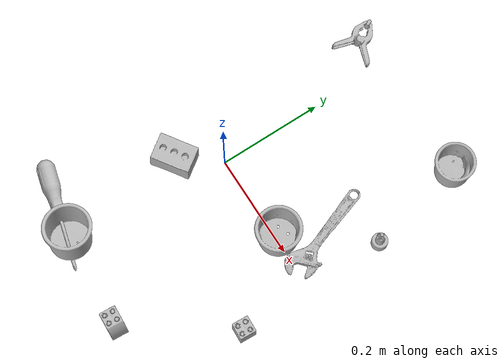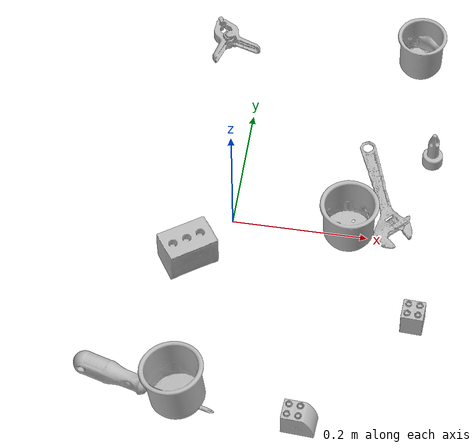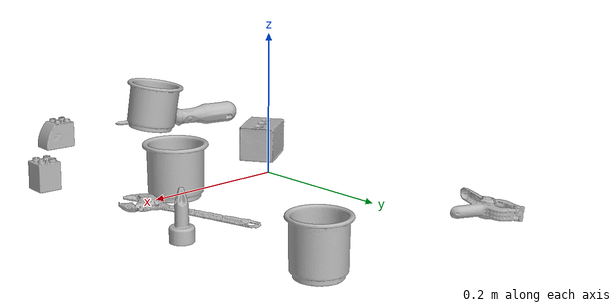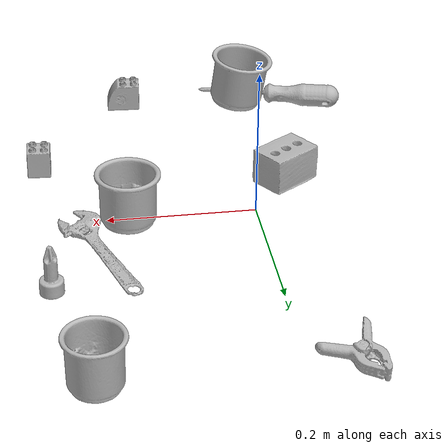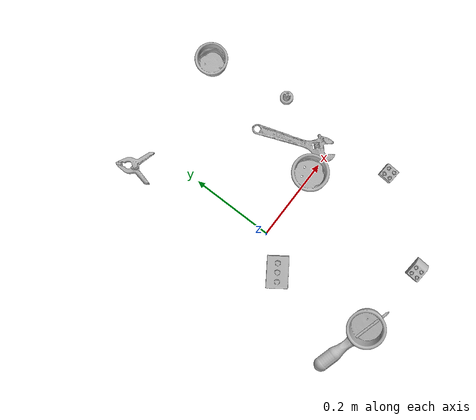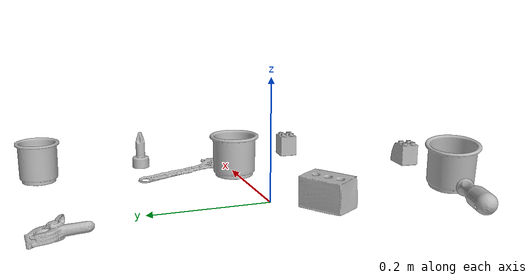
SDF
<sdf version="1.4">
  <world name="default">
    <light name="light1" type="point">
      <pose>0 0 1 0 0 0</pose>
      <diffuse>3 3 3 1</diffuse>
      <specular>3 3 3 1</specular>
    </light>
    <light name="light2" type="point">
      <pose>0 0.5 2 0 0 0</pose>
      <diffuse>1 1 1 1</diffuse>
      <specular>1 1 1 1</specular>
    </light>
    <light name="light3" type="point">
      <pose>0 0.5 2 0 0 0</pose>
      <diffuse>3 3 3 1</diffuse>
      <specular>3 3 3 1</specular>
    </light>
    <scene>
      <ambient>0.7 0.7 0.7</ambient>
    </scene>
    <model name="cup1">
      <link name="link_cup1">
        <collision name="default">
          <geometry>
            <mesh>
              <uri>model://h_cups/collision_meshes/collision.obj</uri>
              <scale>1.0 1.0 1.0</scale>
            </mesh>
          </geometry>
          <surface>
            <friction>
              <ode>
                <mu>0.5</mu>
                <mu2>0.5</mu2>
              </ode>
            </friction>
          <contact>
        <ode>
            <max_vel>0</max_vel>
            <min_depth>0.0001</min_depth>
            <kp>1e8</kp>
        </ode>
    </contact></surface>
        </collision>
        <visual name="default">
          <geometry>
            <mesh>
              <uri>model://h_cups/visual_meshes/visual.dae</uri>
              <scale>1.0 1.0 1.0</scale>
            </mesh>
          </geometry>
        </visual>
        <inertial>
          <mass>0.09017354249954224</mass>
          <pose>-2.702734127524309e-05 0.00023018653155304492 -0.0018405391601845622 -0.024362361674121313 0.06545247408237653 0.12884890922354367</pose>
          <inertia>
            <ixx>0.00011645493</ixx>
            <iyy>0.000115065246</iyy>
            <izz>0.00012212929</izz>
            <ixy>0</ixy>
            <ixz>0</ixz>
            <iyz>0</iyz>
          </inertia>
        </inertial>
      </link>
      <pose>-0.02995433658361435 -0.3126523196697235 0.04201376065611839 0.05098685874816957 0.13370058950113564 3.06894209197354</pose>
    </model>
    <model name="cup2">
      <link name="link_cup2">
        <collision name="default">
          <geometry>
            <mesh>
              <uri>model://g_cups/collision_meshes/collision.obj</uri>
              <scale>1.0 1.0 1.0</scale>
            </mesh>
          </geometry>
          <surface>
            <friction>
              <ode>
                <mu>0.5</mu>
                <mu2>0.5</mu2>
              </ode>
            </friction>
          <contact>
        <ode>
            <max_vel>0</max_vel>
            <min_depth>0.0001</min_depth>
            <kp>1e8</kp>
        </ode>
    </contact></surface>
        </collision>
        <visual name="default">
          <geometry>
            <mesh>
              <uri>model://g_cups/visual_meshes/visual.dae</uri>
              <scale>1.0 1.0 1.0</scale>
            </mesh>
          </geometry>
        </visual>
        <inertial>
          <mass>0.07892031967639923</mass>
          <pose>-0.0007946275873109698 -4.206384619465098e-05 -0.0021329368464648724 -0.21381953376637775 -0.31410844314425407 0.31119468358147234</pose>
          <inertia>
            <ixx>9.211769e-05</ixx>
            <iyy>9.180432e-05</iyy>
            <izz>9.541806e-05</izz>
            <ixy>0</ixy>
            <ixz>0</ixz>
            <iyz>0</iyz>
          </inertia>
        </inertial>
      </link>
      <pose>0.17148712277412415 0.005226347129791975 0.037202998995780945 -1.3028891212649334e-07 3.4620770504994155e-07 -2.8981406046718243</pose>
    </model>
    <model name="cup3">
      <link name="link_cup3">
        <collision name="default">
          <geometry>
            <mesh>
              <uri>model://e_cups/collision_meshes/collision.obj</uri>
              <scale>1.0 1.0 1.0</scale>
            </mesh>
          </geometry>
          <surface>
            <friction>
              <ode>
                <mu>0.5</mu>
                <mu2>0.5</mu2>
              </ode>
            </friction>
          <contact>
        <ode>
            <max_vel>0</max_vel>
            <min_depth>0.0001</min_depth>
            <kp>1e8</kp>
        </ode>
    </contact></surface>
        </collision>
        <visual name="default">
          <geometry>
            <mesh>
              <uri>model://e_cups/visual_meshes/visual.dae</uri>
              <scale>1.0 1.0 1.0</scale>
            </mesh>
          </geometry>
        </visual>
        <inertial>
          <mass>0.08743876963853836</mass>
          <pose>0.0011355745373293757 0.0028797851409763098 -0.0038829741533845663 0.6952398618358687 0.08767880823198544 -0.5235243888876825</pose>
          <inertia>
            <ixx>7.709911e-05</ixx>
            <iyy>8.05796e-05</iyy>
            <izz>7.3715666e-05</izz>
            <ixy>0</ixy>
            <ixz>0</ixz>
            <iyz>0</iyz>
          </inertia>
        </inertial>
      </link>
      <pose>0.2404826134443283 0.34050452709198 0.035599950700998306 3.139107943084022e-06 -1.7436764263946182e-06 -0.7890637846848054</pose>
    </model>
    <model name="toy1">
      <link name="link_toy1">
        <collision name="default">
          <geometry>
            <mesh>
              <uri>model://d_lego_duplo/collision_meshes/collision.obj</uri>
              <scale>1.0 1.0 1.0</scale>
            </mesh>
          </geometry>
          <surface>
            <friction>
              <ode>
                <mu>0.5</mu>
                <mu2>0.5</mu2>
              </ode>
            </friction>
          <contact>
        <ode>
            <max_vel>0</max_vel>
            <min_depth>0.0001</min_depth>
            <kp>1e8</kp>
        </ode>
    </contact></surface>
        </collision>
        <visual name="default">
          <geometry>
            <mesh>
              <uri>model://d_lego_duplo/visual_meshes/visual.dae</uri>
              <scale>1.0 1.0 1.0</scale>
            </mesh>
          </geometry>
        </visual>
        <inertial>
          <mass>0.04292278364300728</mass>
          <pose>0.002830562647432089 0.00016366151976399124 0.0008589805802330375 0.08010895821025366 -0.3835521883517419 0.0010296961053417666</pose>
          <inertia>
            <ixx>8.309218e-06</ixx>
            <iyy>1.1793034e-05</iyy>
            <izz>1.1372727e-05</izz>
            <ixy>0</ixy>
            <ixz>0</ixz>
            <iyz>0</iyz>
          </inertia>
        </inertial>
      </link>
      <pose>0.1466989368200302 -0.32897382974624634 0.02173999510705471 7.720036962543256e-06 -1.4711279073059037e-06 3.082452815152008</pose>
    </model>
    <model name="toy2">
      <link name="link_toy2">
        <collision name="default">
          <geometry>
            <mesh>
              <uri>model://foam_brick/collision_meshes/collision.obj</uri>
              <scale>1.0 1.0 1.0</scale>
            </mesh>
          </geometry>
          <surface>
            <friction>
              <ode>
                <mu>0.5</mu>
                <mu2>0.5</mu2>
              </ode>
            </friction>
          <contact>
        <ode>
            <max_vel>0</max_vel>
            <min_depth>0.0001</min_depth>
            <kp>1e8</kp>
        </ode>
    </contact></surface>
        </collision>
        <visual name="default">
          <geometry>
            <mesh>
              <uri>model://foam_brick/visual_meshes/visual.dae</uri>
              <scale>1.0 1.0 1.0</scale>
            </mesh>
          </geometry>
        </visual>
        <inertial>
          <mass>0.21218973398208618</mass>
          <pose>-0.0002522472059354186 0.00034584320383146405 -0.0002532101352699101 -0.2940188212014215 0.017274433063530492 -0.0007449861184219897</pose>
          <inertia>
            <ixx>9.268843e-05</ixx>
            <iyy>0.00014798183</iyy>
            <izz>0.00014986254</izz>
            <ixy>0</ixy>
            <ixz>0</ixz>
            <iyz>0</iyz>
          </inertia>
        </inertial>
      </link>
      <pose>-0.05466828867793083 -0.0736330896615982 0.025917522609233856 0.013816844348074299 0.004276183283453111 -2.540714423499578</pose>
    </model>
    <model name="toy3">
      <link name="link_toy3">
        <collision name="default">
          <geometry>
            <mesh>
              <uri>model://f_lego_duplo/collision_meshes/collision.obj</uri>
              <scale>1.0 1.0 1.0</scale>
            </mesh>
          </geometry>
          <surface>
            <friction>
              <ode>
                <mu>0.5</mu>
                <mu2>0.5</mu2>
              </ode>
            </friction>
          <contact>
        <ode>
            <max_vel>0</max_vel>
            <min_depth>0.0001</min_depth>
            <kp>1e8</kp>
        </ode>
    </contact></surface>
        </collision>
        <visual name="default">
          <geometry>
            <mesh>
              <uri>model://f_lego_duplo/visual_meshes/visual.dae</uri>
              <scale>1.0 1.0 1.0</scale>
            </mesh>
          </geometry>
        </visual>
        <inertial>
          <mass>0.024021470919251442</mass>
          <pose>2.3694197807344608e-05 0.00013393140397965908 0.0018837875686585903 0.02983869554967358 -0.014424868856459862 -0.6756716113514201</pose>
          <inertia>
            <ixx>5.075869e-06</ixx>
            <iyy>5.1210886e-06</iyy>
            <izz>4.4060694e-06</izz>
            <ixy>0</ixy>
            <ixz>0</ixz>
            <iyz>0</iyz>
          </inertia>
        </inertial>
      </link>
      <pose>0.2826690673828125 -0.14006417989730835 0.021870501339435577 0.00018413354128153615 0.00013995015019689676 -0.05062659547699551</pose>
    </model>
    <model name="toy4">
      <link name="link_toy4">
        <collision name="default">
          <geometry>
            <mesh>
              <uri>model://d_toy_airplane/collision_meshes/collision.obj</uri>
              <scale>1.0 1.0 1.0</scale>
            </mesh>
          </geometry>
          <surface>
            <friction>
              <ode>
                <mu>0.5</mu>
                <mu2>0.5</mu2>
              </ode>
            </friction>
          <contact>
        <ode>
            <max_vel>0</max_vel>
            <min_depth>0.0001</min_depth>
            <kp>1e8</kp>
        </ode>
    </contact></surface>
        </collision>
        <visual name="default">
          <geometry>
            <mesh>
              <uri>model://d_toy_airplane/visual_meshes/visual.dae</uri>
              <scale>1.0 1.0 1.0</scale>
            </mesh>
          </geometry>
        </visual>
        <inertial>
          <mass>0.024586454033851624</mass>
          <pose>9.410288475919515e-05 -5.809331560158171e-05 -0.011728096753358841 0.0002662237897190017 0.004679022855495211 0.5193045098973154</pose>
          <inertia>
            <ixx>7.370539e-06</ixx>
            <iyy>7.376099e-06</iyy>
            <izz>2.2252145e-06</izz>
            <ixy>0</ixy>
            <ixz>0</ixz>
            <iyz>0</iyz>
          </inertia>
        </inertial>
      </link>
      <pose>0.27936121821403503 0.15430325269699097 0.03333904594182968 0.00012303206306694324 -6.429357937476358e-05 1.0889202904633937</pose>
    </model>
    <model name="hardware1">
      <link name="link_hardware1">
        <collision name="default">
          <geometry>
            <mesh>
              <uri>model://phillips_screwdriver/collision_meshes/collision.obj</uri>
              <scale>1.0 1.0 1.0</scale>
            </mesh>
          </geometry>
          <surface>
            <friction>
              <ode>
                <mu>0.5</mu>
                <mu2>0.5</mu2>
              </ode>
            </friction>
          <contact>
        <ode>
            <max_vel>0</max_vel>
            <min_depth>0.0001</min_depth>
            <kp>1e8</kp>
        </ode>
    </contact></surface>
        </collision>
        <visual name="default">
          <geometry>
            <mesh>
              <uri>model://phillips_screwdriver/visual_meshes/visual.dae</uri>
              <scale>1.0 1.0 1.0</scale>
            </mesh>
          </geometry>
        </visual>
        <inertial>
          <mass>0.10962587594985962</mass>
          <pose>-0.04777182266116142 0.0010362300090491772 -0.00045555492397397757 -0.1572763288958183 0.005850995451121224 -0.002156747064170485</pose>
          <inertia>
            <ixx>1.2879916e-05</ixx>
            <iyy>0.00016149164</iyy>
            <izz>0.00016162884</izz>
            <ixy>0</ixy>
            <ixz>0</ixz>
            <iyz>0</iyz>
          </inertia>
        </inertial>
      </link>
      <pose>-0.07852177321910858 -0.307710736989975 0.018051665276288986 -0.4680864493171897 0.004373434427685858 -0.2639399810593014</pose>
    </model>
    <model name="hardware2">
      <link name="link_hardware2">
        <collision name="default">
          <geometry>
            <mesh>
              <uri>model://adjustable_wrench/collision_meshes/collision.obj</uri>
              <scale>1.0 1.0 1.0</scale>
            </mesh>
          </geometry>
          <surface>
            <friction>
              <ode>
                <mu>0.5</mu>
                <mu2>0.5</mu2>
              </ode>
            </friction>
          <contact>
        <ode>
            <max_vel>0</max_vel>
            <min_depth>0.0001</min_depth>
            <kp>1e8</kp>
        </ode>
    </contact></surface>
        </collision>
        <visual name="default">
          <geometry>
            <mesh>
              <uri>model://adjustable_wrench/visual_meshes/visual.dae</uri>
              <scale>1.0 1.0 1.0</scale>
            </mesh>
          </geometry>
        </visual>
        <inertial>
          <mass>0.02999398298561573</mass>
          <pose>0.03740980848670006 -0.002896887483075261 -0.001114922808483243 -0.014473357351062987 0.006656019865341655 -0.010954188906160397</pose>
          <inertia>
            <ixx>6.138701e-06</ixx>
            <iyy>7.184631e-05</iyy>
            <izz>7.765895e-05</izz>
            <ixy>0</ixy>
            <ixz>0</ixz>
            <iyz>0</iyz>
          </inertia>
        </inertial>
      </link>
      <pose>0.21504662930965424 0.07830528169870377 0.006125046871602535 0.04675871334155657 -0.029270658917165276 -1.2353410178995323</pose>
    </model>
    <model name="hardware3">
      <link name="link_hardware3">
        <collision name="default">
          <geometry>
            <mesh>
              <uri>model://medium_clamp/collision_meshes/collision.obj</uri>
              <scale>1.0 1.0 1.0</scale>
            </mesh>
          </geometry>
          <surface>
            <friction>
              <ode>
                <mu>0.5</mu>
                <mu2>0.5</mu2>
              </ode>
            </friction>
          <contact>
        <ode>
            <max_vel>0</max_vel>
            <min_depth>0.0001</min_depth>
            <kp>1e8</kp>
        </ode>
    </contact></surface>
        </collision>
        <visual name="default">
          <geometry>
            <mesh>
              <uri>model://medium_clamp/visual_meshes/visual.dae</uri>
              <scale>1.0 1.0 1.0</scale>
            </mesh>
          </geometry>
        </visual>
        <inertial>
          <mass>0.038817502558231354</mass>
          <pose>0.005390993785113096 0.0003953237028326839 -0.0001222158462041989 -0.0012269117309439718 0.002584502422387493 0.03820772500943274</pose>
          <inertia>
            <ixx>1.05752815e-05</ixx>
            <iyy>1.539003e-05</iyy>
            <izz>2.3705257e-05</izz>
            <ixy>0</ixy>
            <ixz>0</ixz>
            <iyz>0</iyz>
          </inertia>
        </inertial>
      </link>
      <pose>-0.05930345505475998 0.3359421491622925 0.01353391446173191 0.07685021477072303 0.08544430488406168 2.070351098638059</pose>
    </model>
  <physics type="ode">
      <max_contacts>50</max_contacts>
      <ode>
        <solver>
          <type>quick</type>
          <iters>75</iters>
        </solver>
        <constraints>
          <contact_max_correcting_vel>0</contact_max_correcting_vel>
          <contact_surface_layer>0</contact_surface_layer>
        </constraints>
      </ode>
    </physics></world>
</sdf>
